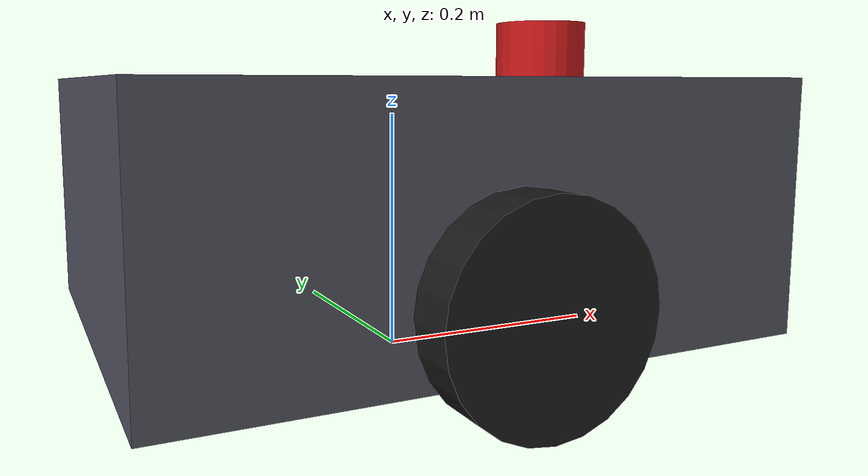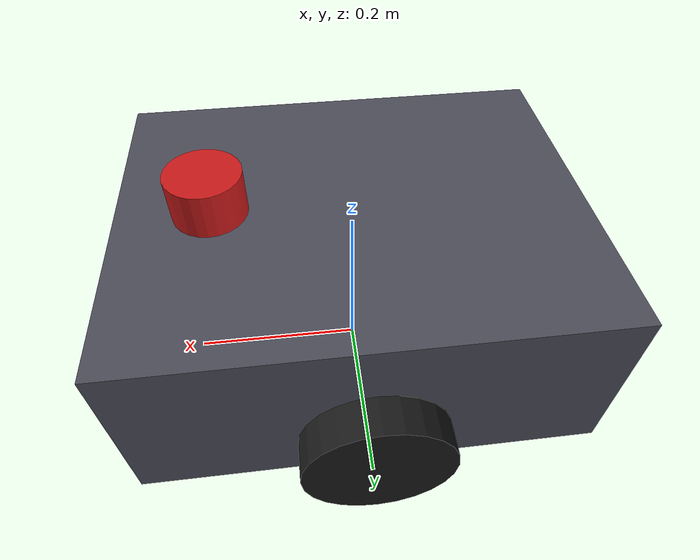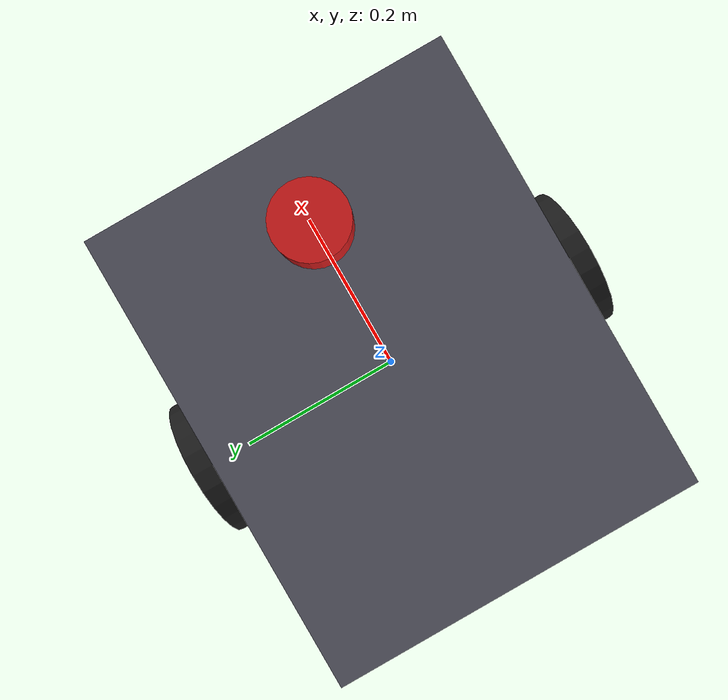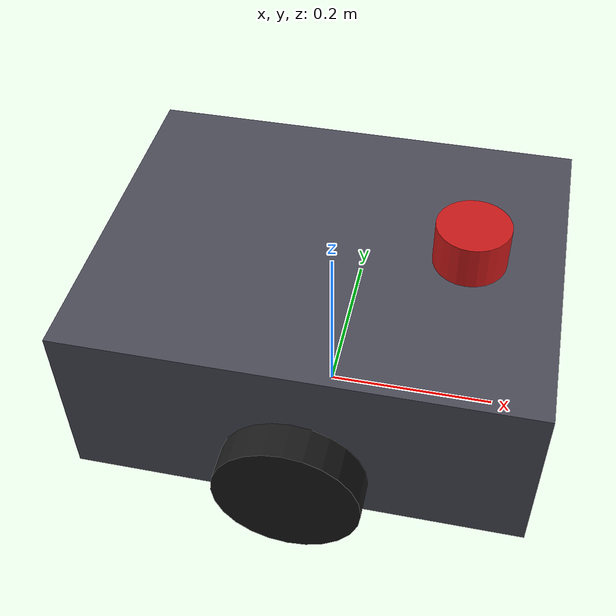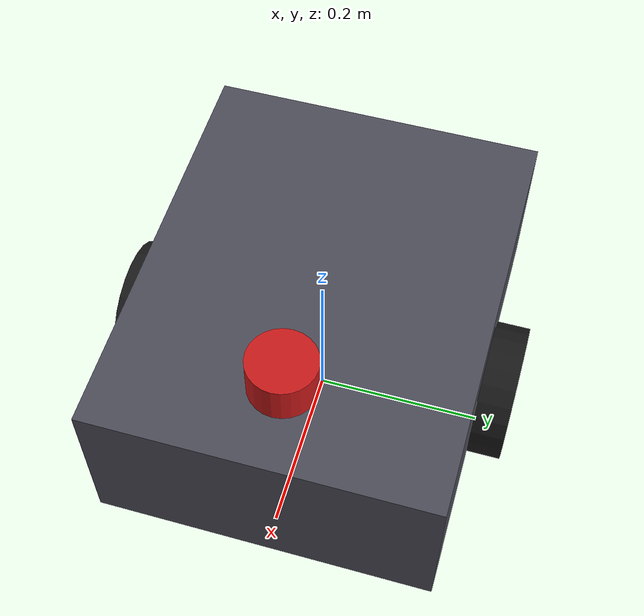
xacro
<?xml version="1.0"?>
<!-- 差速驅動 AMR：兩個驅動輪 + 前後剛性支撐球。
     link／joint 名稱不帶前綴；ROS 的 TF 前綴（amr1/）由 robot_state_publisher 的 frame_prefix 加上。
     robot_id 給 Gazebo 外掛填 frame 與 topic 用（task 4.2）。 -->
<robot name="amr" xmlns:xacro="http://www.ros.org/wiki/xacro">

  <xacro:arg name="robot_id" default="amr1"/>
  <xacro:property name="robot_id" value="$(arg robot_id)"/>

  <!-- ===== 尺寸（公尺、公斤） ===== -->
  <xacro:property name="chassis_length" value="0.5"/>
  <xacro:property name="chassis_width" value="0.4"/>
  <xacro:property name="chassis_height" value="0.2"/>
  <xacro:property name="chassis_clearance" value="0.03"/>
  <xacro:property name="chassis_mass" value="15.0"/>

  <xacro:property name="wheel_radius" value="0.08"/>
  <xacro:property name="wheel_width" value="0.04"/>
  <xacro:property name="wheel_mass" value="1.0"/>
  <xacro:property name="wheel_y" value="${chassis_width / 2 + wheel_width / 2}"/>

  <xacro:property name="caster_radius" value="0.03"/>
  <xacro:property name="caster_mass" value="0.1"/>
  <xacro:property name="caster_x" value="0.2"/>

  <xacro:property name="laser_radius" value="0.04"/>
  <xacro:property name="laser_height" value="0.05"/>
  <xacro:property name="laser_mass" value="0.2"/>
  <xacro:property name="laser_x" value="0.15"/>

  <!-- ===== 運動限制（spec：1.0 m/s、1.5 rad/s；加速度讓停車在 watchdog 0.5 s 後 0.4 s 內完成） ===== -->
  <xacro:property name="max_linear_velocity" value="1.0"/>
  <xacro:property name="max_angular_velocity" value="1.5"/>
  <xacro:property name="max_linear_acceleration" value="2.5"/>
  <xacro:property name="max_angular_acceleration" value="5.0"/>

  <!-- ===== 感測器 ===== -->
  <xacro:property name="odom_rate" value="30"/>
  <xacro:property name="lidar_rate" value="10"/>
  <xacro:property name="lidar_samples" value="360"/>
  <xacro:property name="lidar_min_range" value="0.12"/>
  <xacro:property name="lidar_max_range" value="12.0"/>
  <xacro:property name="imu_rate" value="100"/>

  <!-- base_link 原點在輪軸高度；以下高度都相對於 base_link -->
  <xacro:property name="chassis_z" value="${chassis_clearance + chassis_height / 2 - wheel_radius}"/>
  <xacro:property name="chassis_top_z" value="${chassis_clearance + chassis_height - wheel_radius}"/>
  <xacro:property name="caster_z" value="${caster_radius - wheel_radius}"/>
  <xacro:property name="laser_z" value="${chassis_top_z + laser_height / 2}"/>

  <!-- ===== 慣性巨集（均質實心物體，相對於質心） ===== -->
  <!-- com_z：質心相對 link 原點的高度（預設 0 = 質心就在 link 原點） -->
  <xacro:macro name="box_inertial" params="m x y z com_z:=0">
    <inertial>
      <origin xyz="0 0 ${com_z}" rpy="0 0 0"/>
      <mass value="${m}"/>
      <inertia ixx="${m / 12 * (y * y + z * z)}" ixy="0" ixz="0"
               iyy="${m / 12 * (x * x + z * z)}" iyz="0"
               izz="${m / 12 * (x * x + y * y)}"/>
    </inertial>
  </xacro:macro>

  <!-- 圓柱的軸沿 z；輪子會再整個轉到 y 軸，所以 ixx = izz、iyy 為繞軸慣量 -->
  <xacro:macro name="wheel_inertial" params="m r h">
    <inertial>
      <mass value="${m}"/>
      <inertia ixx="${m / 12 * (3 * r * r + h * h)}" ixy="0" ixz="0"
               iyy="${m / 2 * r * r}" iyz="0"
               izz="${m / 12 * (3 * r * r + h * h)}"/>
    </inertial>
  </xacro:macro>

  <xacro:macro name="cylinder_inertial" params="m r h">
    <inertial>
      <mass value="${m}"/>
      <inertia ixx="${m / 12 * (3 * r * r + h * h)}" ixy="0" ixz="0"
               iyy="${m / 12 * (3 * r * r + h * h)}" iyz="0"
               izz="${m / 2 * r * r}"/>
    </inertial>
  </xacro:macro>

  <xacro:macro name="sphere_inertial" params="m r">
    <inertial>
      <mass value="${m}"/>
      <inertia ixx="${2 / 5 * m * r * r}" ixy="0" ixz="0"
               iyy="${2 / 5 * m * r * r}" iyz="0"
               izz="${2 / 5 * m * r * r}"/>
    </inertial>
  </xacro:macro>

  <!-- ===== base_footprint：地面上、車子中心的投影（REP-105） =====
       沒有 inertial：KDL（robot_state_publisher 用的運動學函式庫）不接受有慣量的根 link -->
  <link name="base_footprint"/>

  <joint name="base_joint" type="fixed">
    <parent link="base_footprint"/>
    <child link="base_link"/>
    <origin xyz="0 0 ${wheel_radius}" rpy="0 0 0"/>
  </joint>

  <!-- ===== 車身 ===== -->
  <link name="base_link">
    <visual>
      <origin xyz="0 0 ${chassis_z}" rpy="0 0 0"/>
      <geometry><box size="${chassis_length} ${chassis_width} ${chassis_height}"/></geometry>
      <material name="chassis_gray"><color rgba="0.3 0.3 0.35 1"/></material>
    </visual>
    <collision>
      <origin xyz="0 0 ${chassis_z}" rpy="0 0 0"/>
      <geometry><box size="${chassis_length} ${chassis_width} ${chassis_height}"/></geometry>
    </collision>
    <xacro:box_inertial m="${chassis_mass}" x="${chassis_length}" y="${chassis_width}" z="${chassis_height}"
                        com_z="${chassis_z}"/>
  </link>

  <!-- ===== 驅動輪（左 side=1、右 side=-1） ===== -->
  <xacro:macro name="drive_wheel" params="name side">
    <link name="${name}_wheel_link">
      <!-- 圓柱預設軸沿 z，繞 x 轉 90° 讓軸改沿 y -->
      <visual>
        <origin xyz="0 0 0" rpy="${pi / 2} 0 0"/>
        <geometry><cylinder radius="${wheel_radius}" length="${wheel_width}"/></geometry>
        <material name="wheel_black"><color rgba="0.1 0.1 0.1 1"/></material>
      </visual>
      <!-- 碰撞用球：圓柱與地面的接觸點會落在輪緣，有效輪距變成內緣距離 0.40 m（參數 0.44），
           實測原地旋轉多轉約 10%、odom 漂移，SLAM 建出的地圖扭曲。球只有一個接觸點且在輪子中心平面上 -->
      <collision>
        <geometry><sphere radius="${wheel_radius}"/></geometry>
      </collision>
      <xacro:wheel_inertial m="${wheel_mass}" r="${wheel_radius}" h="${wheel_width}"/>
    </link>

    <joint name="${name}_wheel_joint" type="continuous">
      <parent link="base_link"/>
      <child link="${name}_wheel_link"/>
      <origin xyz="0 ${side * wheel_y} 0" rpy="0 0 0"/>
      <axis xyz="0 1 0"/>
    </joint>
  </xacro:macro>

  <xacro:drive_wheel name="left" side="1"/>
  <xacro:drive_wheel name="right" side="-1"/>

  <!-- ===== 支撐球（前 side=1、後 side=-1）：固定在車身、零摩擦，只負責撐住車身 ===== -->
  <xacro:macro name="caster" params="name side">
    <link name="${name}_caster_link">
      <visual>
        <geometry><sphere radius="${caster_radius}"/></geometry>
        <material name="caster_silver"><color rgba="0.7 0.7 0.7 1"/></material>
      </visual>
      <collision>
        <geometry><sphere radius="${caster_radius}"/></geometry>
      </collision>
      <xacro:sphere_inertial m="${caster_mass}" r="${caster_radius}"/>
    </link>

    <joint name="${name}_caster_joint" type="fixed">
      <parent link="base_link"/>
      <child link="${name}_caster_link"/>
      <origin xyz="${side * caster_x} 0 ${caster_z}" rpy="0 0 0"/>
    </joint>

    <!-- Gazebo 擴充：摩擦係數 0，球在地上滑動而不卡住轉向 -->
    <gazebo reference="${name}_caster_link">
      <mu1>0.0</mu1>
      <mu2>0.0</mu2>
    </gazebo>
  </xacro:macro>

  <xacro:caster name="front" side="1"/>
  <xacro:caster name="rear" side="-1"/>

  <!-- ===== 光達：車頂上方 ===== -->
  <link name="laser_link">
    <visual>
      <geometry><cylinder radius="${laser_radius}" length="${laser_height}"/></geometry>
      <material name="laser_red"><color rgba="0.8 0.1 0.1 1"/></material>
    </visual>
    <collision>
      <geometry><cylinder radius="${laser_radius}" length="${laser_height}"/></geometry>
    </collision>
    <xacro:cylinder_inertial m="${laser_mass}" r="${laser_radius}" h="${laser_height}"/>
  </link>

  <joint name="laser_joint" type="fixed">
    <parent link="base_link"/>
    <child link="laser_link"/>
    <origin xyz="${laser_x} 0 ${laser_z}" rpy="0 0 0"/>
  </joint>

  <!-- ===== IMU：與 base_link 同位置，沒有外形 ===== -->
  <link name="imu_link"/>

  <joint name="imu_joint" type="fixed">
    <parent link="base_link"/>
    <child link="imu_link"/>
    <origin xyz="0 0 0" rpy="0 0 0"/>
  </joint>

  <gazebo>
    <!-- 差速驅動：收 cmd_vel → 轉動兩輪；由輪子轉動計算並發布里程計與 odom→base_footprint TF -->
    <plugin filename="ignition-gazebo-diff-drive-system" name="ignition::gazebo::systems::DiffDrive">
      <left_joint>left_wheel_joint</left_joint>
      <right_joint>right_wheel_joint</right_joint>
      <wheel_separation>${2 * wheel_y}</wheel_separation>
      <wheel_radius>${wheel_radius}</wheel_radius>
      <!-- 速度指令來自 watchdog（task 5.2），不是直接來自 /cmd_vel -->
      <topic>/${robot_id}/cmd_vel_gz</topic>
      <odom_topic>/${robot_id}/odom</odom_topic>
      <tf_topic>/${robot_id}/tf</tf_topic>
      <frame_id>${robot_id}/odom</frame_id>
      <child_frame_id>${robot_id}/base_footprint</child_frame_id>
      <odom_publish_frequency>${odom_rate}</odom_publish_frequency>
      <min_linear_velocity>${-max_linear_velocity}</min_linear_velocity>
      <max_linear_velocity>${max_linear_velocity}</max_linear_velocity>
      <min_angular_velocity>${-max_angular_velocity}</min_angular_velocity>
      <max_angular_velocity>${max_angular_velocity}</max_angular_velocity>
      <min_linear_acceleration>${-max_linear_acceleration}</min_linear_acceleration>
      <max_linear_acceleration>${max_linear_acceleration}</max_linear_acceleration>
      <min_angular_acceleration>${-max_angular_acceleration}</min_angular_acceleration>
      <max_angular_acceleration>${max_angular_acceleration}</max_angular_acceleration>
    </plugin>

    <!-- 發布輪子 joint 的角度；robot_state_publisher 用它算出輪子的 TF -->
    <plugin filename="ignition-gazebo-joint-state-publisher-system"
            name="ignition::gazebo::systems::JointStatePublisher">
      <topic>/${robot_id}/joint_states</topic>
    </plugin>
  </gazebo>

  <!-- 2D 光達：gpu_lidar 以 GPU 渲染深度影像換算距離（需要 world 載入 Sensors 系統、ogre2） -->
  <gazebo reference="laser_link">
    <sensor name="lidar" type="gpu_lidar">
      <topic>/${robot_id}/scan</topic>
      <update_rate>${lidar_rate}</update_rate>
      <always_on>true</always_on>
      <visualize>true</visualize>
      <!-- fixed joint 在轉成 SDF 時會被併入根 link base_footprint，laser_link 不再存在，必須明確指定訊息的 frame -->
      <ignition_frame_id>${robot_id}/laser_link</ignition_frame_id>
      <lidar>
        <scan>
          <horizontal>
            <samples>${lidar_samples}</samples>
            <resolution>1</resolution>
            <!-- 不含 +π：避免 -π 與 +π 兩個樣本落在同一方向，角度間隔剛好 1° -->
            <min_angle>${-pi}</min_angle>
            <max_angle>${pi - 2 * pi / lidar_samples}</max_angle>
          </horizontal>
        </scan>
        <range>
          <min>${lidar_min_range}</min>
          <max>${lidar_max_range}</max>
          <resolution>0.01</resolution>
        </range>
      </lidar>
    </sensor>
  </gazebo>

  <!-- IMU：需要 world 載入 Imu 系統 -->
  <gazebo reference="imu_link">
    <sensor name="imu" type="imu">
      <topic>/${robot_id}/imu</topic>
      <update_rate>${imu_rate}</update_rate>
      <always_on>true</always_on>
      <ignition_frame_id>${robot_id}/imu_link</ignition_frame_id>
    </sensor>
  </gazebo>

</robot>
